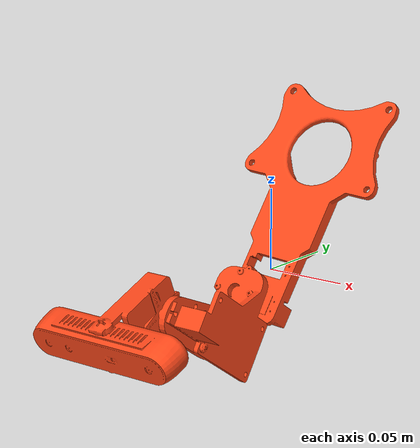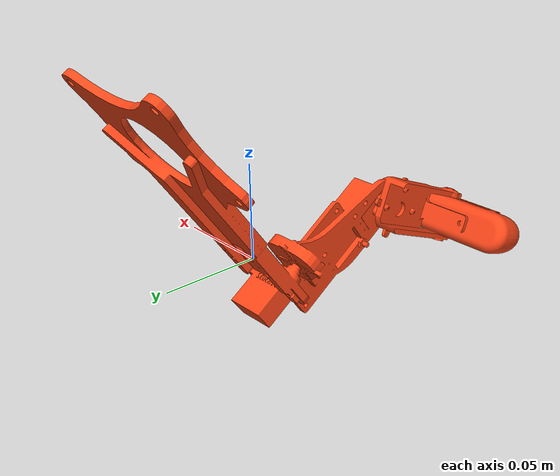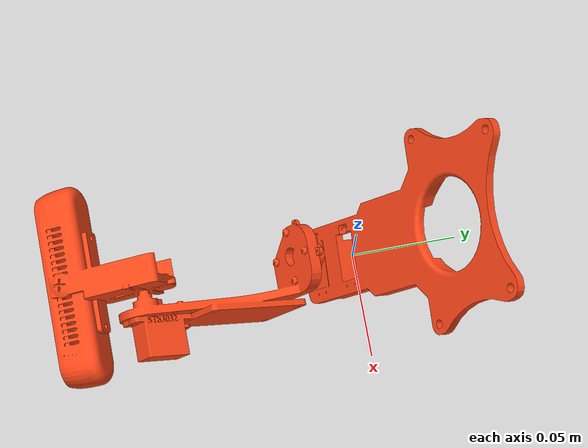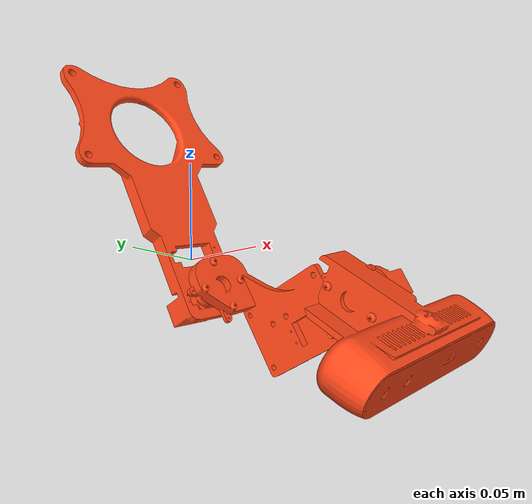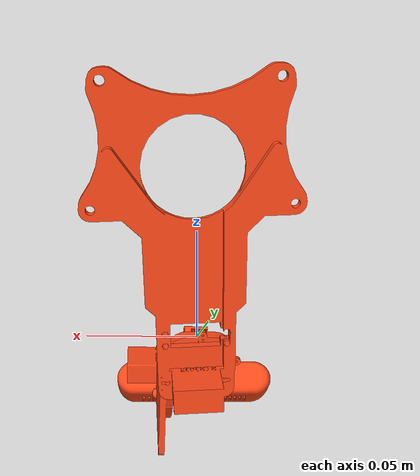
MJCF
<mujoco model="Active_Vision_Platform">
  <default>
    <default class="robot">
      <default class="motor">
        <joint />
        <motor />
      </default>
      <default class="visual">
        <geom material="visualgeom" contype="0" conaffinity="0" group="2" />
      </default>
      <default class="collision">
        <geom material="collision_material" condim="3" contype="0" conaffinity="1" priority="1" group="1" solref="0.005 1" solimp="0.99 0.999 1e-05" friction="1 0.01 0.01" />
      </default>
    </default>
  </default>

  <compiler angle="radian" />

  <asset>
    <material name="visualgeom" rgba="0.792156862745098 0.819607843137255 0.933333333333333 1" />
    <material name="default_material" rgba="0.7 0.7 0.7 1" />
    <material name="collision_material" rgba="1.0 0.28 0.1 0.9" />
    <mesh name="base_link.obj" file="./meshes/base_link.obj" />
    <mesh name="Empty_Link1.obj" file="./meshes/Empty_Link1.obj" />
    <mesh name="Empty_Link2.obj" file="./meshes/Empty_Link2.obj" />
  </asset>

  <worldbody>
    <body name="base_link" pos="0 0 0" childclass="robot">
      <inertial pos="0 0 0" mass="0.175" diaginertia="0.000583456354562162 0.000640864540576776 0.000161784736864578" />
      <geom name="base_link_collision" type="mesh" mesh="base_link.obj" class="collision" />
      <geom name="base_link_visual" type="mesh" mesh="base_link.obj" material="visualgeom" class="visual" />
      <body name="Empty_Link1" pos="-0.009349 -0.025641 -0.013045" quat="-0.32797432617233774 0.6246739242891658 -0.6274251550311 -0.32947382979407475">
        <joint name="joint1" type="hinge" class="motor" axis="0 0 -1" />
        <inertial pos="0.0148 -0.0125 -0.0281" mass="0.175" diaginertia="0.000583456354562162 0.000640864540576776 0.000161784736864578" />
        <geom name="Empty_Link1_collision" type="mesh" mesh="Empty_Link1.obj" class="collision" />
        <geom name="Empty_Link1_visual" type="mesh" mesh="Empty_Link1.obj" material="visualgeom" class="visual" />
        <body name="Empty_Link2" pos="0.030254 -0.0087565 -0.070686" quat="-0.20276523400275737 -0.20197027798886577 0.6788520501921232 -0.6762057088185948">
          <joint name="joint2" type="hinge" class="motor" axis="0 0 -1" />
          <inertial pos="-0.0271 -0.0003 -0.0080" mass="0.175" diaginertia="0.000583456354562162 0.000640864540576776 0.000161784736864578" />
          <geom name="Empty_Link2_collision" type="mesh" mesh="Empty_Link2.obj" class="collision" />
          <geom name="Empty_Link2_visual" type="mesh" mesh="Empty_Link2.obj" material="visualgeom" class="visual" />
        </body>
      </body>
      <camera name="closeup" pos="0.15 0.15 0.25" quat="0.65 0.28 0.2 0.68" />
      <camera name="front" pos="0.0 0.35 0.15" quat="0.71 0.0 0.0 0.71" />
      <camera name="side" pos="-0.35 0.0 0.15" quat="0.5 -0.5 0.5 0.5" />
    </body>
  </worldbody>

  <actuator>
    <motor name="joint1_ctrl" joint="joint1" class="motor" />
    <motor name="joint2_ctrl" joint="joint2" class="motor" />
  </actuator>

  <contact>
    <exclude body1="base_link" body2="Empty_Link1" />
    <exclude body1="Empty_Link1" body2="Empty_Link2" />
  </contact>
</mujoco>
